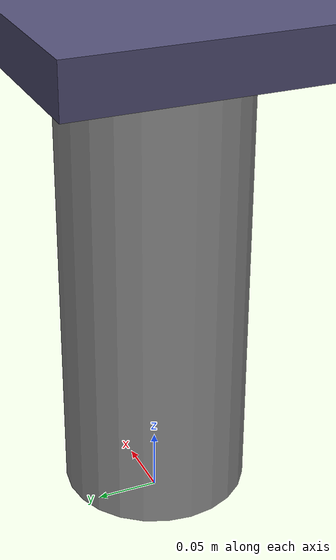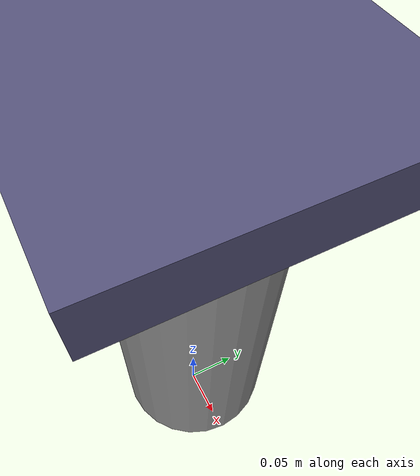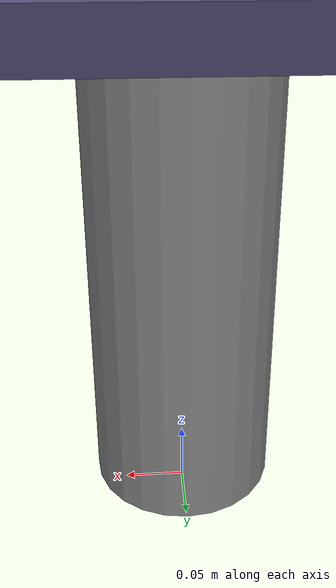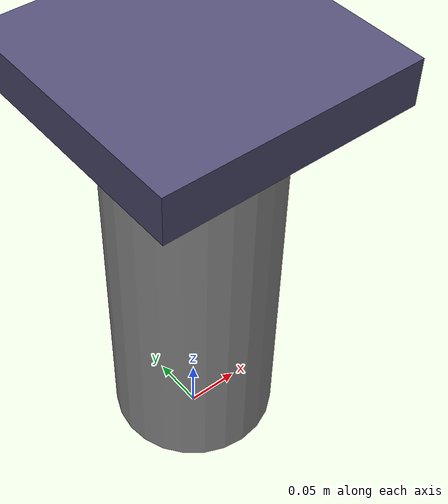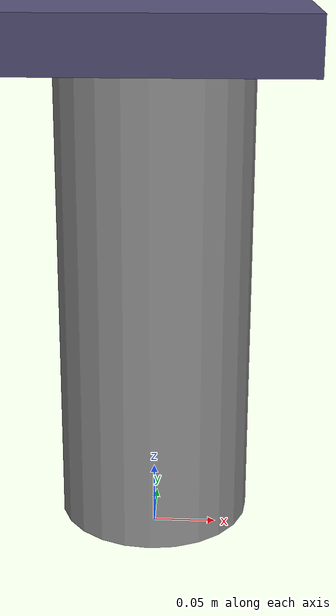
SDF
<?xml version='1.0'?>
<sdf version='1.7'>
  <model name='solar_panel'>
    <link name='link_1'>
      <inertial>
        <mass>10</mass>
        <inertia>
          <ixx>2.40967</ixx>
          <ixy>0</ixy>
          <ixz>0</ixz>
          <iyy>0.834667</iyy>
          <iyz>0</iyz>
          <izz>3.24167</izz>
        </inertia>
        <pose>0 0 0 0 -0 0</pose>
      </inertial>
      <pose>-0 0 0.4 0 -0 0</pose>
      <gravity>1</gravity>
      <self_collide>0</self_collide>
      <kinematic>0</kinematic>
      <enable_wind>0</enable_wind>
      <visual name='visual'>
        <pose>0 0 0 0 -0 0</pose>
        <geometry>
          <box>
            <size>1 1.7 0.04</size>
          </box>
        </geometry>
        <material>
          <lighting>1</lighting>
          <script>
            <uri>file://media/materials/scripts/gazebo.material</uri>
            <name>Gazebo/Grey</name>
          </script>
          <shader type='pixel'>
            <normal_map>__default__</normal_map>
          </shader>
          <ambient>0.031 0 0.173 1</ambient>
          <diffuse>0.322 0.31 0.463 1</diffuse>
          <specular>0 0 0 1</specular>
          <emissive>0 0 0 1</emissive>
        </material>
        <transparency>0</transparency>
        <cast_shadows>1</cast_shadows>
      </visual>
      <collision name='collision'>
        <laser_retro>0</laser_retro>
        <max_contacts>10</max_contacts>
        <pose>0 0 0 0 -0 0</pose>
        <geometry>
          <box>
            <size>1 1.7 0.04</size>
          </box>
        </geometry>
        <surface>
          <friction>
            <ode>
              <mu>100</mu>
              <mu2>100</mu2>
              <fdir1>0 0 0</fdir1>
              <slip1>0</slip1>
              <slip2>0</slip2>
            </ode>
            <torsional>
              <coefficient>1</coefficient>
              <patch_radius>0</patch_radius>
              <surface_radius>0</surface_radius>
              <use_patch_radius>1</use_patch_radius>
              <ode>
                <slip>0</slip>
              </ode>
            </torsional>
          </friction>
          <bounce>
            <restitution_coefficient>0</restitution_coefficient>
            <threshold>1e+06</threshold>
          </bounce>
          <contact>
            <collide_without_contact>0</collide_without_contact>
            <collide_without_contact_bitmask>1</collide_without_contact_bitmask>
            <collide_bitmask>1</collide_bitmask>
            <ode>
              <soft_cfm>0</soft_cfm>
              <soft_erp>0.2</soft_erp>
              <kp>1e+13</kp>
              <kd>1</kd>
              <max_vel>0.01</max_vel>
              <min_depth>0</min_depth>
            </ode>
            <bullet>
              <split_impulse>1</split_impulse>
              <split_impulse_penetration_threshold>-0.01</split_impulse_penetration_threshold>
              <soft_cfm>0</soft_cfm>
              <soft_erp>0.2</soft_erp>
              <kp>1e+13</kp>
              <kd>1</kd>
            </bullet>
          </contact>
        </surface>
      </collision>
    </link>
    <link name='link_0'>
      <inertial>
        <mass>100</mass>
        <inertia>
          <ixx>1.22394</ixx>
          <ixy>0</ixy>
          <ixz>0</ixz>
          <iyy>1.22394</iyy>
          <iyz>0</iyz>
          <izz>0.278556</izz>
        </inertia>
        <pose>0 0 0 0 -0 0</pose>
      </inertial>
      <pose>-0 -0 0.199 0 -0 0</pose>
      <gravity>1</gravity>
      <self_collide>0</self_collide>
      <kinematic>0</kinematic>
      <enable_wind>0</enable_wind>
      <visual name='visual'>
        <pose>0 0 0 0 -0 0</pose>
        <geometry>
          <cylinder>
            <radius>0.07464</radius>
            <length>0.360776</length>
          </cylinder>
        </geometry>
        <material>
          <lighting>1</lighting>
          <script>
            <uri>file://media/materials/scripts/gazebo.material</uri>
            <name>Gazebo/Grey</name>
          </script>
          <shader type='pixel'>
            <normal_map>__default__</normal_map>
          </shader>
          <ambient>0.3 0.3 0.3 1</ambient>
          <diffuse>0.7 0.7 0.7 1</diffuse>
          <specular>0.01 0.01 0.01 1</specular>
          <emissive>0 0 0 1</emissive>
        </material>
        <transparency>0</transparency>
        <cast_shadows>1</cast_shadows>
      </visual>
      <collision name='collision'>
        <laser_retro>0</laser_retro>
        <max_contacts>10</max_contacts>
        <pose>0 0 0 0 -0 0</pose>
        <geometry>
          <cylinder>
            <radius>0.07464</radius>
            <length>0.360776</length>
          </cylinder>
        </geometry>
        <surface>
          <friction>
            <ode>
              <mu>100</mu>
              <mu2>100</mu2>
              <fdir1>0 0 0</fdir1>
              <slip1>0</slip1>
              <slip2>0</slip2>
            </ode>
            <torsional>
              <coefficient>1</coefficient>
              <patch_radius>0</patch_radius>
              <surface_radius>0</surface_radius>
              <use_patch_radius>1</use_patch_radius>
              <ode>
                <slip>0</slip>
              </ode>
            </torsional>
          </friction>
          <bounce>
            <restitution_coefficient>0</restitution_coefficient>
            <threshold>1e+06</threshold>
          </bounce>
          <contact>
            <collide_without_contact>0</collide_without_contact>
            <collide_without_contact_bitmask>1</collide_without_contact_bitmask>
            <collide_bitmask>1</collide_bitmask>
            <ode>
              <soft_cfm>0</soft_cfm>
              <soft_erp>0.2</soft_erp>
              <kp>1e+13</kp>
              <kd>1</kd>
              <max_vel>0.01</max_vel>
              <min_depth>0</min_depth>
            </ode>
            <bullet>
              <split_impulse>1</split_impulse>
              <split_impulse_penetration_threshold>-0.01</split_impulse_penetration_threshold>
              <soft_cfm>0</soft_cfm>
              <soft_erp>0.2</soft_erp>
              <kp>1e+13</kp>
              <kd>1</kd>
            </bullet>
          </contact>
        </surface>
      </collision>
    </link>
    <joint name='link_1_JOINT_1' type='fixed'>
      <parent>link_0</parent>
      <child>link_1</child>
      <pose>0 0 0 0 -0 0</pose>
      <physics>
        <ode>
          <limit>
            <cfm>0</cfm>
            <erp>0.2</erp>
          </limit>
          <suspension>
            <cfm>0</cfm>
            <erp>0.2</erp>
          </suspension>
        </ode>
      </physics>
    </joint>
    <static>0</static>
    <allow_auto_disable>1</allow_auto_disable>
  </model>
</sdf>
